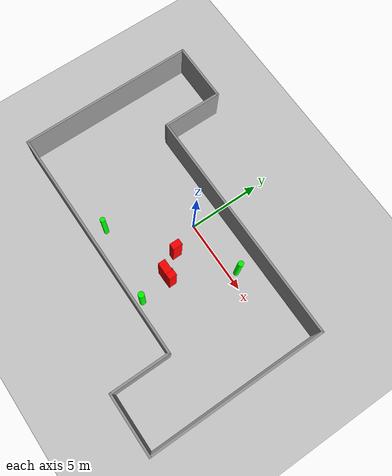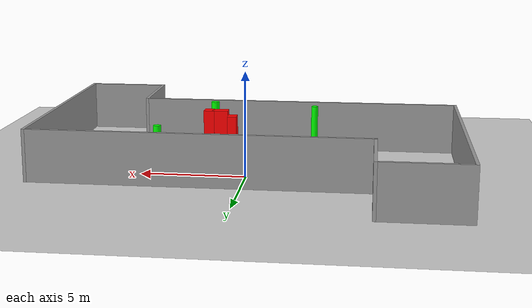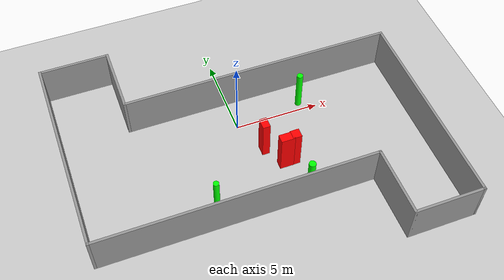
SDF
<sdf version="1.7">
 <world name="default">
  <light name="sun" type="directional">
   <pose>0 0 10 0 -0 0</pose>
   <diffuse>0.8 0.8 0.8 1</diffuse>
   <specular>0.2 0.2 0.2 1</specular>
   <attenuation>
    <range>1000</range>
    <constant>0.9</constant>
    <linear>0.01</linear>
    <quadratic>0.001</quadratic>
   </attenuation>
   <direction>-0.5 0.1 -0.9</direction>
   <spot><inner_angle>0</inner_angle><outer_angle>0</outer_angle><falloff>0</falloff></spot>
  </light>
  <model name="ground_plane">
   <static>1</static>
   <link name="link">
    <collision name="collision">
     <geometry><plane><normal>0 0 1</normal><size>100 100</size></plane></geometry>
     <surface>
      <contact><collide_bitmask>65535</collide_bitmask></contact>
      <friction><ode><mu>100</mu><mu2>50</mu2></ode></friction>
     </surface>
    </collision>
    <visual name="visual">
     <cast_shadows>0</cast_shadows>
     <geometry><plane><normal>0 0 1</normal><size>100 100</size></plane></geometry>
     <material>
      <script><uri>file://media/materials/scripts/gazebo.material</uri><name>Gazebo/Grey</name></script>
     </material>
    </visual>
   </link>
  </model>
  <gravity>0 0 -9.8</gravity>
  <magnetic_field>6e-06 2.3e-05 -4.2e-05</magnetic_field>
  <atmosphere type="adiabatic"/>
  <physics type="ode">
   <max_step_size>0.001</max_step_size>
   <real_time_factor>1</real_time_factor>
   <real_time_update_rate>1000</real_time_update_rate>
  </physics>
  <scene><ambient>0.4 0.4 0.4 1</ambient><background>0.7 0.7 0.7 1</background><shadows>1</shadows></scene>
  <spherical_coordinates>
   <surface_model>EARTH_WGS84</surface_model>
   <latitude_deg>0</latitude_deg>
   <longitude_deg>0</longitude_deg>
   <elevation>0</elevation>
   <heading_deg>0</heading_deg>
  </spherical_coordinates>
  <model name="my_base_walls">
   <link name="Wall_13">
    <collision name="Wall_13_Collision">
     <geometry><box><size>12.15 0.15 2.5</size></box></geometry>
     <pose>0 0 1.25 0 -0 0</pose>
    </collision>
    <visual name="Wall_13_Visual">
     <pose>0 0 1.25 0 -0 0</pose>
     <geometry><box><size>12.15 0.15 2.5</size></box></geometry>
     <material>
      <script><uri>file://media/materials/scripts/gazebo.material</uri><name>Gazebo/Grey</name></script>
      <ambient>1 1 1 1</ambient>
     </material>
     <meta><layer>0</layer></meta>
    </visual>
    <pose>10 -2 0 0 -0 1.5708</pose>
   </link>
   <link name="Wall_15">
    <collision name="Wall_15_Collision">
     <geometry><box><size>16.15 0.15 2.5</size></box></geometry>
     <pose>0 0 1.25 0 -0 0</pose>
    </collision>
    <visual name="Wall_15_Visual">
     <pose>0 0 1.25 0 -0 0</pose>
     <geometry><box><size>16.15 0.15 2.5</size></box></geometry>
     <material>
      <script><uri>file://media/materials/scripts/gazebo.material</uri><name>Gazebo/Grey</name></script>
      <ambient>1 1 1 1</ambient>
     </material>
     <meta><layer>0</layer></meta>
    </visual>
    <pose>2 4 0 0 -0 3.14159</pose>
   </link>
   <link name="Wall_17">
    <collision name="Wall_17_Collision">
     <geometry><box><size>4.15 0.15 2.5</size></box></geometry>
     <pose>0 0 1.25 0 -0 0</pose>
    </collision>
    <visual name="Wall_17_Visual">
     <pose>0 0 1.25 0 -0 0</pose>
     <geometry><box><size>4.15 0.15 2.5</size></box></geometry>
     <material>
      <script><uri>file://media/materials/scripts/gazebo.material</uri><name>Gazebo/Grey</name></script>
      <ambient>1 1 1 1</ambient>
     </material>
     <meta><layer>0</layer></meta>
    </visual>
    <pose>6 -6 0 0 -0 -1.5708</pose>
   </link>
   <link name="Wall_19">
    <collision name="Wall_19_Collision">
     <geometry><box><size>12.15 0.15 2.5</size></box></geometry>
     <pose>0 0 1.25 0 -0 0</pose>
    </collision>
    <visual name="Wall_19_Visual">
     <pose>0 0 1.25 0 -0 0</pose>
     <geometry><box><size>12.15 0.15 2.5</size></box></geometry>
     <material>
      <script><uri>file://media/materials/scripts/gazebo.material</uri><name>Gazebo/Grey</name></script>
      <ambient>1 1 1 1</ambient>
     </material>
     <meta><layer>0</layer></meta>
    </visual>
    <pose>-10 2 0 0 -0 1.5708</pose>
   </link>
   <link name="Wall_21">
    <collision name="Wall_21_Collision">
     <geometry><box><size>4.15 0.15 2.5</size></box></geometry>
     <pose>0 0 1.25 0 -0 0</pose>
    </collision>
    <visual name="Wall_21_Visual">
     <pose>0 0 1.25 0 -0 0</pose>
     <geometry><box><size>4.15 0.15 2.5</size></box></geometry>
     <material>
      <script><uri>file://media/materials/scripts/gazebo.material</uri><name>Gazebo/Grey</name></script>
      <ambient>1 1 1 1</ambient>
     </material>
     <meta><layer>0</layer></meta>
    </visual>
    <pose>-8 8 0 0 -0 0</pose>
   </link>
   <link name="Wall_23">
    <collision name="Wall_23_Collision">
     <geometry><box><size>4.15 0.15 2.5</size></box></geometry>
     <pose>0 0 1.25 0 -0 0</pose>
    </collision>
    <visual name="Wall_23_Visual">
     <pose>0 0 1.25 0 -0 0</pose>
     <geometry><box><size>4.15 0.15 2.5</size></box></geometry>
     <material>
      <script><uri>file://media/materials/scripts/gazebo.material</uri><name>Gazebo/Grey</name></script>
      <ambient>1 1 1 1</ambient>
     </material>
     <meta><layer>0</layer></meta>
    </visual>
    <pose>-6 6 0 0 -0 -1.5708</pose>
   </link>
   <link name="Wall_25">
    <collision name="Wall_25_Collision">
     <geometry><box><size>4.15 0.15 2.5</size></box></geometry>
     <pose>0 0 1.25 0 -0 0</pose>
    </collision>
    <visual name="Wall_25_Visual">
     <pose>0 0 1.25 0 -0 0</pose>
     <geometry><box><size>4.15 0.15 2.5</size></box></geometry>
     <material>
      <script><uri>file://media/materials/scripts/gazebo.material</uri><name>Gazebo/Grey</name></script>
      <ambient>1 1 1 1</ambient>
     </material>
     <meta><layer>0</layer></meta>
    </visual>
    <pose>8 -8 0 0 -0 0</pose>
   </link>
   <link name="Wall_9">
    <collision name="Wall_9_Collision">
     <geometry><box><size>16.15 0.15 2.5</size></box></geometry>
     <pose>0 0 1.25 0 -0 0</pose>
    </collision>
    <visual name="Wall_9_Visual">
     <pose>0 0 1.25 0 -0 0</pose>
     <geometry><box><size>16.15 0.15 2.5</size></box></geometry>
     <material>
      <script><uri>file://media/materials/scripts/gazebo.material</uri><name>Gazebo/Grey</name></script>
      <ambient>1 1 1 1</ambient>
     </material>
     <meta><layer>0</layer></meta>
    </visual>
    <pose>-2 -4 0 0 -0 3.14159</pose>
   </link>
   <static>1</static>
   <pose>-0 -2 0 0 -0 0</pose>
  </model>
  <model name="cylinder1">
   <static>1</static>
   <link name="link">
    <inertial>
     <mass>1</mass>
     <inertia><ixx>0.5</ixx><ixy>0</ixy><ixz>0</ixz><iyy>0.5</iyy><iyz>0</iyz><izz>1</izz></inertia>
    </inertial>
    <collision name="collision">
     <geometry><cylinder><radius>0.16499282632978068</radius><length>2.5</length></cylinder></geometry>
    </collision>
    <visual name="visual">
     <geometry><cylinder><radius>0.16499282632978068</radius><length>2.5</length></cylinder></geometry>
     <material>
      <ambient>0 1 0 1</ambient>
      <diffuse>0 1 0 1</diffuse>
      <specular>0.1 0.1 0.1 1</specular>
      <emissive>0 0 0 0</emissive>
     </material>
    </visual>
   </link>
   <pose>-2.917292645733526 -4.85889978067316 1.25 0 0 0</pose>
  </model>
  <model name="cylinder2">
   <static>1</static>
   <link name="link">
    <inertial>
     <mass>1</mass>
     <inertia><ixx>0.5</ixx><ixy>0</ixy><ixz>0</ixz><iyy>0.5</iyy><iyz>0</iyz><izz>1</izz></inertia>
    </inertial>
    <collision name="collision">
     <geometry><cylinder><radius>0.18245081618920897</radius><length>2.5</length></cylinder></geometry>
    </collision>
    <visual name="visual">
     <geometry><cylinder><radius>0.18245081618920897</radius><length>2.5</length></cylinder></geometry>
     <material>
      <ambient>0 1 0 1</ambient>
      <diffuse>0 1 0 1</diffuse>
      <specular>0.1 0.1 0.1 1</specular>
      <emissive>0 0 0 0</emissive>
     </material>
    </visual>
   </link>
   <pose>4.070384135164996 0.5034848571198758 1.25 0 0 0</pose>
  </model>
  <model name="cylinder3">
   <static>1</static>
   <link name="link">
    <inertial>
     <mass>1</mass>
     <inertia><ixx>0.5</ixx><ixy>0</ixy><ixz>0</ixz><iyy>0.5</iyy><iyz>0</iyz><izz>1</izz></inertia>
    </inertial>
    <collision name="collision">
     <geometry><cylinder><radius>0.20209344164877413</radius><length>2.5</length></cylinder></geometry>
    </collision>
    <visual name="visual">
     <geometry><cylinder><radius>0.20209344164877413</radius><length>2.5</length></cylinder></geometry>
     <material>
      <ambient>0 1 0 1</ambient>
      <diffuse>0 1 0 1</diffuse>
      <specular>0.1 0.1 0.1 1</specular>
      <emissive>0 0 0 0</emissive>
     </material>
    </visual>
   </link>
   <pose>2.277705997916744 -5.462588729938017 1.25 0 0 0</pose>
  </model>
  <model name="box1">
   <static>1</static>
   <link name="link">
    <inertial>
     <mass>1</mass>
     <inertia><ixx>0.083</ixx><ixy>0</ixy><ixz>0</ixz><iyy>0.083</iyy><iyz>0</iyz><izz>0.083</izz></inertia>
    </inertial>
    <collision name="collision">
     <geometry><box><size>0.803366337985274 0.4959295022677939 2.5</size></box></geometry>
    </collision>
    <visual name="visual">
     <geometry><box><size>0.803366337985274 0.4959295022677939 2.5</size></box></geometry>
     <material>
      <ambient>1 0 0 1</ambient>
      <diffuse>1 0 0 1</diffuse>
      <specular>0.1 0.1 0.1 1</specular>
      <emissive>0 0 0 0</emissive>
     </material>
    </visual>
    <sensor name="my_contact" type="contact">
     <contact><collision>box_collision</collision><topic>__default_topic__</topic></contact>
    </sensor>
   </link>
   <pose>1.685136935562329 -3.3454207116802843 1.25 0 0 0</pose>
  </model>
  <model name="box2">
   <static>1</static>
   <link name="link">
    <inertial>
     <mass>1</mass>
     <inertia><ixx>0.083</ixx><ixy>0</ixy><ixz>0</ixz><iyy>0.083</iyy><iyz>0</iyz><izz>0.083</izz></inertia>
    </inertial>
    <collision name="collision">
     <geometry><box><size>0.43261978235476584 0.6545405755225266 2.5</size></box></geometry>
    </collision>
    <visual name="visual">
     <geometry><box><size>0.43261978235476584 0.6545405755225266 2.5</size></box></geometry>
     <material>
      <ambient>1 0 0 1</ambient>
      <diffuse>1 0 0 1</diffuse>
      <specular>0.1 0.1 0.1 1</specular>
      <emissive>0 0 0 0</emissive>
     </material>
    </visual>
    <sensor name="my_contact" type="contact">
     <contact><collision>box_collision</collision><topic>__default_topic__</topic></contact>
    </sensor>
   </link>
   <pose>0.8977276854724234 -2.020984466689338 1.25 0 0 0</pose>
  </model>
  <model name="box3">
   <static>1</static>
   <link name="link">
    <inertial>
     <mass>1</mass>
     <inertia><ixx>0.083</ixx><ixy>0</ixy><ixz>0</ixz><iyy>0.083</iyy><iyz>0</iyz><izz>0.083</izz></inertia>
    </inertial>
    <collision name="collision">
     <geometry><box><size>0.5165869200375118 0.5348617554053744 2.5</size></box></geometry>
    </collision>
    <visual name="visual">
     <geometry><box><size>0.5165869200375118 0.5348617554053744 2.5</size></box></geometry>
     <material>
      <ambient>1 0 0 1</ambient>
      <diffuse>1 0 0 1</diffuse>
      <specular>0.1 0.1 0.1 1</specular>
      <emissive>0 0 0 0</emissive>
     </material>
    </visual>
    <sensor name="my_contact" type="contact">
     <contact><collision>box_collision</collision><topic>__default_topic__</topic></contact>
    </sensor>
   </link>
   <pose>2.2271473286620385 -3.3136964492928094 1.25 0 0 0</pose>
  </model>
 </world>
</sdf>
